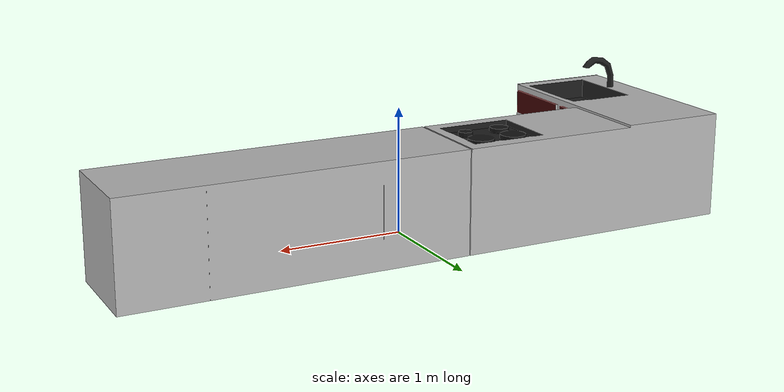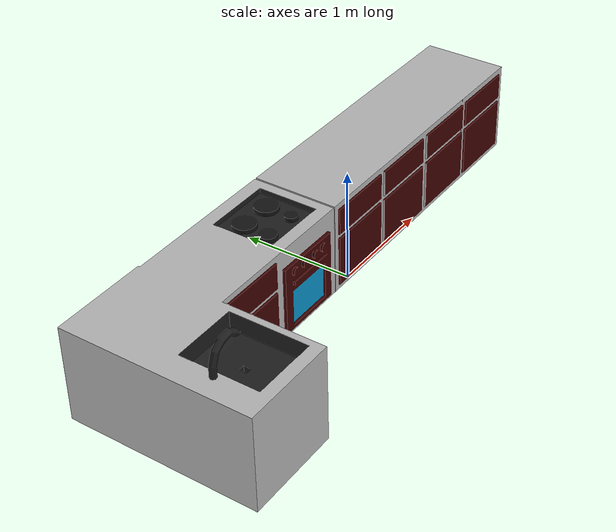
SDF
<?xml version='1.0'?>
<sdf version='1.6'>
  <model name='kitchen'>
    <link name='link_0'>
      <pose frame=''>0 0 0 0 -0 0</pose>
      <inertial>
        <mass>1</mass>
        <inertia>
          <ixx>0.166667</ixx>
          <ixy>0</ixy>
          <ixz>0</ixz>
          <iyy>0.166667</iyy>
          <iyz>0</iyz>
          <izz>0.166667</izz>
        </inertia>
        <pose frame=''>0 0 0 0 -0 0</pose>
      </inertial>
      <self_collide>0</self_collide>
      <kinematic>0</kinematic>
      <gravity>1</gravity>
      <visual name='visual'>
        <pose frame=''>0 0.32 0 0 -0 0</pose>
        <geometry>
          <mesh>
            <uri>model://kitchen/meshes/model.dae</uri>
            <scale>0.055 0.055 0.06</scale>
          </mesh>
        </geometry>
        <cast_shadows>1</cast_shadows>
        <transparency>0</transparency>
        <material>
          <shader type='vertex'>
            <normal_map>__default__</normal_map>
          </shader>
        </material>
      </visual>
      <collision name='collision_1'>
        <laser_retro>0</laser_retro>
        <max_contacts>10</max_contacts>
        <pose frame=''>-2.05 -0.39 0.41 0 -0 0</pose>
        <geometry>
          <box>
            <size>0.83 1.1 0.82</size>
          </box>
        </geometry>
        <surface>
          <friction>
            <ode>
              <mu>1</mu>
              <mu2>1</mu2>
              <fdir1>0 0 0</fdir1>
              <slip1>0</slip1>
              <slip2>0</slip2>
            </ode>
            <torsional>
              <coefficient>1</coefficient>
              <patch_radius>0</patch_radius>
              <surface_radius>0</surface_radius>
              <use_patch_radius>1</use_patch_radius>
              <ode>
                <slip>0</slip>
              </ode>
            </torsional>
          </friction>
          <bounce>
            <restitution_coefficient>0</restitution_coefficient>
            <threshold>1e+06</threshold>
          </bounce>
          <contact>
            <collide_without_contact>0</collide_without_contact>
            <collide_without_contact_bitmask>1</collide_without_contact_bitmask>
            <collide_bitmask>1</collide_bitmask>
            <ode>
              <soft_cfm>0</soft_cfm>
              <soft_erp>0.2</soft_erp>
              <kp>1e+13</kp>
              <kd>1</kd>
              <max_vel>0.01</max_vel>
              <min_depth>0</min_depth>
            </ode>
            <bullet>
              <split_impulse>1</split_impulse>
              <split_impulse_penetration_threshold>-0.01</split_impulse_penetration_threshold>
              <soft_cfm>0</soft_cfm>
              <soft_erp>0.2</soft_erp>
              <kp>1e+13</kp>
              <kd>1</kd>
            </bullet>
          </contact>
        </surface>
      </collision>
      <collision name='collision'>
        <laser_retro>0</laser_retro>
        <max_contacts>10</max_contacts>
        <pose frame=''>0 0.35 0.41 0 -0 0</pose>
        <geometry>
          <box>
            <size>4.95 0.77 0.82</size>
          </box>
        </geometry>
        <surface>
          <friction>
            <ode>
              <mu>1</mu>
              <mu2>1</mu2>
              <fdir1>0 0 0</fdir1>
              <slip1>0</slip1>
              <slip2>0</slip2>
            </ode>
            <torsional>
              <coefficient>1</coefficient>
              <patch_radius>0</patch_radius>
              <surface_radius>0</surface_radius>
              <use_patch_radius>1</use_patch_radius>
              <ode>
                <slip>0</slip>
              </ode>
            </torsional>
          </friction>
          <bounce>
            <restitution_coefficient>0</restitution_coefficient>
            <threshold>1e+06</threshold>
          </bounce>
          <contact>
            <collide_without_contact>0</collide_without_contact>
            <collide_without_contact_bitmask>1</collide_without_contact_bitmask>
            <collide_bitmask>1</collide_bitmask>
            <ode>
              <soft_cfm>0</soft_cfm>
              <soft_erp>0.2</soft_erp>
              <kp>1e+13</kp>
              <kd>1</kd>
              <max_vel>0.01</max_vel>
              <min_depth>0</min_depth>
            </ode>
            <bullet>
              <split_impulse>1</split_impulse>
              <split_impulse_penetration_threshold>-0.01</split_impulse_penetration_threshold>
              <soft_cfm>0</soft_cfm>
              <soft_erp>0.2</soft_erp>
              <kp>1e+13</kp>
              <kd>1</kd>
            </bullet>
          </contact>
        </surface>
      </collision>
    </link>
    <static>1</static>
    <allow_auto_disable>1</allow_auto_disable>
  </model>
</sdf>
